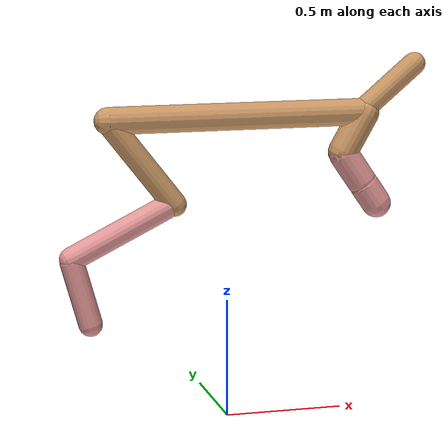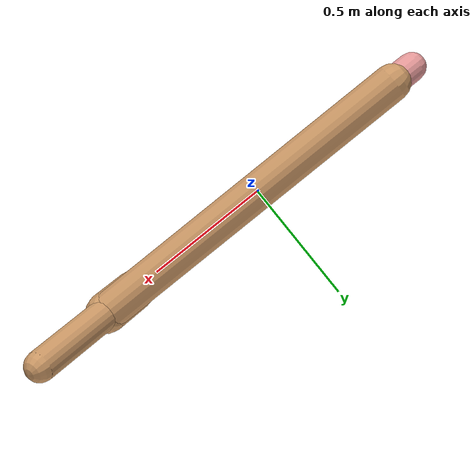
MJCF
<mujoco model="cheetah">
  <compiler angle="radian" coordinate="local" inertiafromgeom="true" settotalmass="14" />
  <default>
    <joint armature=".1" damping=".01" limited="true" solimplimit="0 .8 .03" solreflimit=".02 1" stiffness="8" />
    <geom conaffinity="0" condim="3" contype="1" friction="0.8 .1 .1" rgba="0.8 0.6 .4 1" solimp="0.0 0.8 0.01" solref="0.02 1" />
    <motor ctrllimited="true" ctrlrange="-1 1" />
  </default>
  <size nstack="300000" nuser_geom="1" />
  <option gravity="0 0 -9.81" timestep="0.01" />
  <worldbody>
    <body name="torso" pos="0.0 0.0 1.2803629566116663">
      <joint armature="0" axis="1 0 0" damping="0" limited="false" name="ignorex" pos="0 0 0" stiffness="0" type="slide" />
      <joint armature="0" axis="0 0 1" damping="0" limited="false" name="ignorez" pos="0 0 0" stiffness="0" type="slide" />
      <joint armature="0" axis="0 1 0" damping="0" limited="false" name="ignorey" pos="0 0 0" stiffness="0" type="hinge" />
      <geom fromto="-0.5 0.0 0.0 0.6004689736053712 0.0 0.0" name="torso" size="0.05760225209173628" type="capsule" />
      <geom axisangle="0 1 0 .87" name="head" pos="0.7004689736053712 0.0 0.1" size="0.04811212450487206 0.15" type="capsule" />

      <body name="bthigh" pos="-.5 0 0">
        <joint axis="0 1 0" damping="6" name="bthigh" pos="0 0 0" range="-.52 1.05" stiffness="240" type="hinge" />
        <geom axisangle="0 1 0 -3.8" name="bthigh" pos="0.14348200277752376 0.0 -0.18652660361078088" size="0.05072698120086871 0.21631578704126408" type="capsule" />
        <body name="bshin" pos="0.24696400555504752 0.0 -0.36305320722156176">
          <joint axis="0 1 0" damping="4.5" name="bshin" pos="0 0 0" range="-.785 .785" stiffness="180" type="hinge" />
          <geom axisangle="0 1 0 -2.03" name="bshin" pos="-0.20598632318337867 0.0 -0.10299316159168934" rgba="0.9 0.6 0.6 1" size="0.05072698120086871 0.22377495211165252" type="capsule" />
          <body name="bfoot" pos="-0.41197264636675734 0.0 -0.20598632318337867">
            <joint axis="0 1 0" damping="3" name="bfoot" pos="0 0 0" range="-.4 .785" stiffness="120" type="hinge" />
            <geom axisangle="0 1 0 -.27" name="bfoot" pos="0.0436602458529851 0.0 -0.14116812825798514" rgba="0.9 0.6 0.6 1" size="0.05072698120086871 0.14023230332330225" type="capsule" />
            <inertial mass="10" />
          </body>
        </body>
      </body>
      <body name="fthigh" pos="0.6004689736053712 0.0 0.0">
        <joint axis="0 1 0" damping="4.5" name="fthigh" pos="0 0 0" range="-1.5 0.8" stiffness="180" type="hinge" />
        <geom axisangle="0 1 0 .52" name="fthigh" pos="-0.04989554608158897 0.0 -0.0855352218541525" size="0.063254040399424 0.0931" type="capsule" />
        <body name="fshin" pos="-0.09979109216317794 0.0 -0.171070443708305">
          <joint axis="0 1 0" damping="3" name="fshin" pos="0 0 0" range="-1.2 1.1" stiffness="120" type="hinge" />
          <geom axisangle="0 1 0 -.6" name="fshin" pos="0.046381400387749405 0.0 -0.06422040053688378" rgba="0.9 0.6 0.6 1" size="0.063254040399424 0.07419999999999999" type="capsule" />
          <body name="ffoot" pos="0.09276280077549881 0.0 -0.12844080107376757">
            <joint axis="0 1 0" damping="1.5" name="ffoot" pos="0 0 0" range="-3.1 -0.3" stiffness="60" type="hinge" />
            <geom axisangle="0 1 0 -.6" name="ffoot" pos="0.033644090582416526 0.0 -0.05233525201709238" rgba="0.9 0.6 0.6 1" size="0.063254040399424 0.049" type="capsule" />
            <inertial mass="10" />
          </body>
        </body>
      </body>
    </body>
  </worldbody>
  <actuator>
    <motor gear="120" joint="bthigh" name="bthigh" />
    <motor gear="90" joint="bshin" name="bshin" />
    <motor gear="60" joint="bfoot" name="bfoot" />
    <motor gear="120" joint="fthigh" name="fthigh" />
    <motor gear="60" joint="fshin" name="fshin" />
    <motor gear="30" joint="ffoot" name="ffoot" />
  </actuator>
</mujoco>
